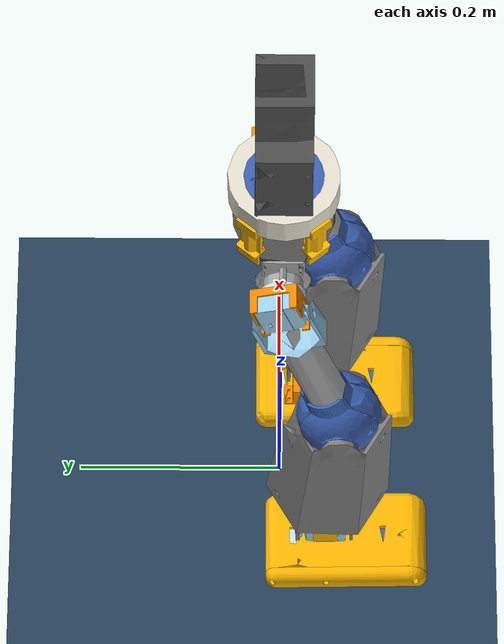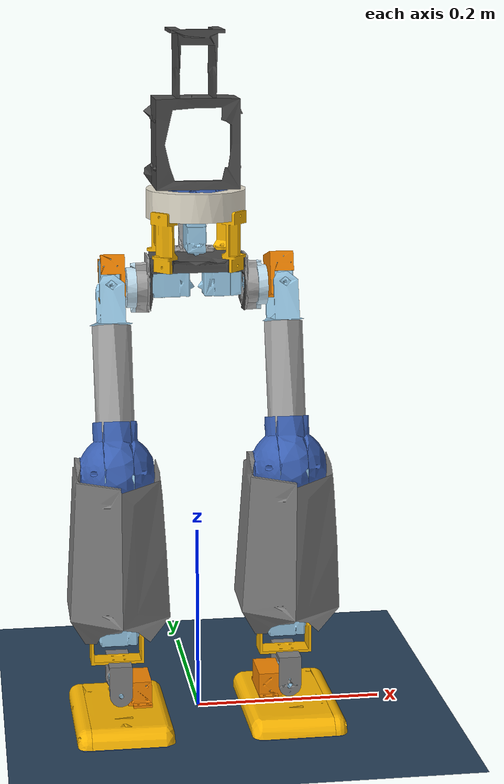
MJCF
<mujoco model="scene">
    <include file="wildrobot.xml" />

    <visual>
        <headlight diffuse="0.6 0.6 0.6" ambient="0.3 0.3 0.3" specular="0 0 0" />
        <rgba haze="0.15 0.25 0.35 1" />
        <global azimuth="160" elevation="-20" />
    </visual>

    <asset>
        <texture type="skybox" builtin="gradient" rgb1="0.3 0.5 0.7" rgb2="0 0 0" width="512" height="3072" />
        <texture type="2d" name="groundplane" builtin="checker" mark="edge" rgb1="0.2 0.3 0.4" rgb2="0.1 0.2 0.3" markrgb="0.8 0.8 0.8" width="300" height="300" />
        <material name="groundplane" texture="groundplane" texuniform="true" texrepeat="5 5" reflectance="0.2" />
    </asset>

    <worldbody>
        <light pos="0 0 3.5" dir="0 0 -1" directional="true" />
        <geom name="floor" size="0 0 0.05" pos="0 0 0" type="plane" material="groundplane" />
    </worldbody>

    <keyframe>
        <key name="home" qpos="-0.00692549 0.0149391 0.487869 0.999632 -0.0254871 -0.00610409 -0.00700632 -3.42235e-05 -0.00215037 -0.0452561 0.0278619 0.0200629 0.0390773 -2.97196e-05 0.0469174 0.0275132 0.0237825 -0.0304712" />
    </keyframe>

</mujoco>

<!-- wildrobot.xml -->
<mujoco model="wildrobot">
  <option>
    <flag eulerdamp="disable" />
  </option>
  <compiler angle="radian" meshdir="assets" autolimits="true" />
  <default>
    <default class="wildrobot">
      <joint frictionloss="0.1" armature="0.005" />
      <position kp="50" dampratio="1" />
      <default class="visual">
        <geom type="mesh" contype="0" conaffinity="0" group="2" />
      </default>
      <default class="collision">
        <geom group="3" />
      </default>
    </default>
  </default>
  <sensor>
    <gyro site="trunk_imu" name="trunk_gyro" />
    <accelerometer site="trunk_imu" name="trunk_accelerometer" />
    <magnetometer site="trunk_imu" name="trunk_magnetometer" />
    <gyro site="right_leg_imu" name="right_leg_gyro" />
    <accelerometer site="right_leg_imu" name="right_leg_accelerometer" />
    <gyro site="left_leg_imu" name="left_leg_gyro" />
    <accelerometer site="left_leg_imu" name="left_leg_accelerometer" />
    <velocimeter site="trunk_imu" name="trunk_local_linvel" />
    <framequat objtype="site" objname="trunk_imu" name="trunk_orientation" />
    <framezaxis objtype="site" objname="trunk_imu" name="trunk_upvector" />
    <framexaxis objtype="site" objname="trunk_imu" name="trunk_forwardvector" />
    <framelinvel objtype="site" objname="trunk_imu" name="trunk_global_linvel" />
    <frameangvel objtype="site" objname="trunk_imu" name="trunk_global_angvel" />
    <framelinvel objtype="site" objname="right_leg_imu" name="right_leg_global_linvel" />
    <frameangvel objtype="site" objname="right_leg_imu" name="right_leg_global_angvel" />
    <framelinvel objtype="site" objname="left_leg_imu" name="left_leg_global_linvel" />
    <frameangvel objtype="site" objname="left_leg_imu" name="left_leg_global_angvel" />
    <framelinvel objtype="site" objname="right_foot_front" name="right_foot_front_global_linvel" />
    <framelinvel objtype="site" objname="right_foot_back" name="right_foot_back_global_linvel" />
    <framelinvel objtype="site" objname="left_foot_front" name="left_foot_front_global_linvel" />
    <framelinvel objtype="site" objname="left_foot_back" name="left_foot_back_global_linvel" />
    <frameangvel objtype="site" objname="right_foot_front" name="right_foot_front_global_angvel" />
    <frameangvel objtype="site" objname="right_foot_back" name="right_foot_back_global_angvel" />
    <frameangvel objtype="site" objname="left_foot_front" name="left_foot_front_global_angvel" />
    <frameangvel objtype="site" objname="left_foot_back" name="left_foot_back_global_angvel" />
  </sensor>
  <default>
    <default class="lobotServo">
      <geom contype="0" conaffinity="0" />
      <joint damping="0.60" frictionloss="0.052" armature="0.028" />
      <position kp="17.8" kv="0.0" forcerange="-3.35 3.35" />
    </default>
    <default class="backlash">
      <joint damping="0.01" frictionloss="0" armature="0.01" limited="true" range="-0.008726646259971648 0.008726646259971648" />
    </default>
  </default>
  <worldbody>
    <body name="base" pos="0 0 0.5">
      <freejoint name="floating_base" />
      <body name="waist" pos="0 0 0" quat="1 0 0 0" childclass="wildrobot">
        <inertial pos="-3.08835e-05 0.00181517 0.00596571" mass="0.439621" fullinertia="0.000698685 0.000998265 0.00070313 7.22885e-08 5.24148e-07 -1.38528e-05" />
        <geom type="mesh" class="visual" pos="-0.00143119 0.0596393 -0.0273687" quat="0.499918 0.500082 -0.500082 -0.499918" mesh="htd_45h_1circle" material="htd_45h_1circle_material" />
        <geom type="mesh" class="visual" pos="-0.000153209 -0.000128558 0.12518" quat="0.422618 0 0 0.906308" mesh="waist_trunk_support" material="waist_trunk_support_material" />
        <geom type="mesh" class="visual" pos="0 0 0" quat="0 0 0 1" mesh="trunk_bottom" material="trunk_bottom_material" />
        <geom type="mesh" class="visual" pos="-0.059645 0.00619509 -0.00396881" quat="1 0.000164358 1.11022e-16 -2.01228e-16" mesh="htd_45h_1circle" material="htd_45h_1circle_material" />
        <geom type="mesh" class="visual" pos="-2.77556e-17 -1.04083e-17 0" quat="2.84495e-16 0 0 1" mesh="trunk_servo_connect" material="trunk_servo_connect_material" />
        <geom type="mesh" class="visual" pos="-0.00025 3.85976e-17 -6.93889e-18" quat="1 0 0 -2.84495e-16" mesh="hip_cover" material="hip_cover_material" />
        <geom type="mesh" class="visual" pos="-9.02056e-17 1.49186e-16 0.12518" quat="0.422618 0 -2.22045e-16 0.906308" mesh="scroll_out" material="scroll_out_material" />
        <geom type="mesh" class="visual" pos="0.000153209 -0.000128558 0.12518" quat="0.422618 0 9.69569e-18 -0.906308" mesh="waist_trunk_support" material="waist_trunk_support_material" />
        <geom type="mesh" class="visual" pos="-0.0001 3.81639e-17 -6.93889e-18" quat="1 0 0 -2.84495e-16" mesh="hip_trunk_connect" material="hip_trunk_connect_material" />
        <geom type="mesh" class="visual" pos="-0.000153209 0.000128558 0.12518" quat="0.906308 0 0 0.422618" mesh="waist_trunk_support" material="waist_trunk_support_material" />
        <geom type="mesh" class="visual" pos="0.000153209 0.000128558 0.12518" quat="0.906308 0 0 -0.422618" mesh="waist_trunk_support" material="waist_trunk_support_material" />
        <geom type="mesh" class="visual" pos="0.00025 -3.85976e-17 -6.93889e-18" quat="2.84495e-16 0 0 1" mesh="hip_cover" material="hip_cover_material" />
        <geom type="mesh" class="visual" pos="0.00143119 -0.0596393 -0.0273687" quat="0.499918 0.500082 0.500082 0.499918" mesh="htd_45h_1circle" material="htd_45h_1circle_material" />
        <geom type="mesh" class="visual" pos="0.0001 -3.81639e-17 -6.93889e-18" quat="2.84495e-16 0 0 1" mesh="hip_trunk_connect" material="hip_trunk_connect_material" />
        <body name="chassis" pos="4.17458e-05 -1.97751e-05 0.0482" quat="0.000583051 1 -2.40923e-07 -0.00041321">
          <joint axis="0 0 1" name="waist" type="hinge" range="-1.5707963267948966 1.5707963267948966" class="lobotServo" />
          <inertial pos="0.00235226 0.00416672 -0.0682563" mass="0.841214" fullinertia="0.00126289 0.00149567 0.000913668 -0.000107674 2.45804e-05 3.30802e-05" />
          <geom type="mesh" class="visual" pos="-0.000141421 0.0233586 -0.068" quat="8.06646e-17 4.996e-16 -1 4.06576e-20" mesh="batterybox" material="batterybox_material" />
          <geom type="mesh" class="visual" pos="-0.000141421 -0.000141421 -0.0763796" quat="2.42467e-20 1 4.996e-16 1.70073e-17" mesh="waist_platform" material="waist_platform_material" />
          <geom type="mesh" class="visual" pos="-0.000141421 -0.000141421 -0.0763796" quat="2.42467e-20 1 4.996e-16 1.70073e-17" mesh="waist_platform_2" material="waist_platform_2_material" />
          <site group="3" name="trunk_imu" pos="0.000119839 -0.000141421 -0.119" quat="9.77815e-17 -4.44089e-16 1 -0" />
        </body>
        <body name="left_hip" pos="0.0536 4.74705e-05 -0.0335836" quat="0.499502 -0.500085 -0.500498 0.499915">
          <joint axis="0 0 1" name="left_waist_hip" type="hinge" range="-1.308996938995747 1.3089969389957472" class="lobotServo" />
          <inertial pos="-0.000491371 -0.0094267 -0.0331054" mass="0.0849728" fullinertia="1.97777e-05 1.95098e-05 2.44282e-05 5.27256e-07 -4.14571e-07 -1.64422e-06" />
          <geom type="mesh" class="visual" pos="0.00859714 -0.0324713 0.0566" quat="0.560986 0.430459 0.560986 -0.430459" mesh="hip_servo_hook_left" material="hip_servo_hook_left_material" />
          <geom type="mesh" class="visual" pos="0.0260594 0.000376192 0.0231393" quat="0.0921807 0.701073 0.0921807 -0.701073" mesh="htd_45h_1circle" material="htd_45h_1circle_material" />
          <body name="upper_leg" pos="-0.0259403 -0.00712299 -0.0365475" quat="0.701293 -0.0926664 0.700714 0.092743">
            <joint axis="0 0 1" name="left_hip" type="hinge" range="-1.0471975511965959 0.34906585039886767" class="lobotServo" />
            <inertial pos="-0.00104181 0.159312 0.0267034" mass="0.236565" fullinertia="0.000987068 0.000125887 0.000979617 9.86461e-06 9.63535e-09 1.07533e-06" />
            <geom type="mesh" class="visual" pos="-0.095 3.46945e-17 0.0267" quat="0.707107 0.707107 2.22045e-16 2.45377e-16" mesh="up_leg_servo_connect" material="up_leg_servo_connect_material" />
            <geom type="mesh" class="visual" pos="-0.0948 -0.0004 0.0266985" quat="0.707105 0.707109 -2.84803e-06 2.84595e-06" mesh="knee_ball_left" material="knee_ball_left_material" />
            <geom type="mesh" class="visual" pos="-0.095 -0.0002 0.0267" quat="0.707107 0.707107 3.33067e-16 2.16678e-16" mesh="knee_ball_mid" material="knee_ball_mid_material" />
            <geom type="mesh" class="visual" pos="-0.095 1.38778e-17 0.0267" quat="0.707107 0.707107 3.33067e-16 2.1823e-16" mesh="up_leg" material="up_leg_material" />
            <geom type="mesh" class="visual" pos="0.0253613 0.198628 -0.0329432" quat="0.706811 0.000530114 -0.707402 0.000526879" mesh="htd_45h_1circle" material="htd_45h_1circle_material" />
            <geom type="mesh" class="visual" pos="-0.0952 -0.000399963 0.0268019" quat="0.707365 0.706849 -2.31378e-05 2.31379e-05" mesh="knee_ball_right" material="knee_ball_right_material" />
            <site group="3" name="left_leg_imu" pos="-3.19189e-16 0.173352 0.0264651" quat="0.5 0.5 0.5 -0.5" />
            <body name="lower_leg" pos="-0.02685 0.192352 0.0267" quat="0.12279 -0.696361 0.122789 -0.696367">
              <joint axis="0 0 1" name="left_knee" type="hinge" range="-0.3490658503988667 1.22173047639603" class="lobotServo" />
              <inertial pos="-0.000521354 -0.101401 0.0270617" mass="0.380663" fullinertia="0.00177714 0.000669988 0.00168908 1.88914e-05 3.0835e-08 -3.5834e-05" />
              <geom type="mesh" class="visual" pos="-2.01228e-15 0.192752 -0.0677579" quat="0.5 -0.5 -0.5 -0.5" mesh="low_leg_right" material="low_leg_right_material" />
              <geom type="mesh" class="visual" pos="-3.60822e-16 0.192752 -0.0677579" quat="0.5 -0.5 -0.5 -0.5" mesh="low_leg_left" material="low_leg_left_material" />
              <geom type="mesh" class="visual" pos="0.0596393 -0.173769 0.0526109" quat="1.29896e-14 -1.45382e-15 -1 0.000164358" mesh="htd_45h_1circle" material="htd_45h_1circle_material" />
              <body name="left_ankle" pos="-4.74705e-05 -0.179984 0.000442075" quat="0.999048 0.000564473 0.000438249 -0.0436191">
                <joint axis="0 0 1" name="left_ankle" type="hinge" range="-0.4363323486443301 0.6108652025522675" class="lobotServo" />
                <inertial pos="-0.000778386 -0.0291765 0.0259275" mass="0.0230191" fullinertia="1.34186e-05 1.32703e-05 1.41853e-05 -1.80568e-07 1.56329e-08 2.24395e-07" />
                <geom type="mesh" class="visual" pos="1.249e-16 -0.0722 0.0268" quat="0.5 -0.5 -0.5 -0.5" mesh="servo_bracket_btm" material="servo_bracket_btm_material" />
                <geom type="mesh" class="visual" pos="0 -0.0732 0.0268" quat="0.5 -0.5 -0.5 -0.5" mesh="servo_bracket_top" material="servo_bracket_top_material" />
                <body name="left_foot" pos="-0.0268 -0.0594 0.0268" quat="0.499992 0.500008 0.499992 0.500008">
                  <joint axis="0 0 1" name="left_foot" type="hinge" range="-0.34909746539659237 0.3490342354011394" class="lobotServo" />
                  <inertial pos="-0.0183724 -0.00183883 0.00908575" mass="0.413618" fullinertia="0.00096407 0.00073874 0.0003209 1.74031e-05 -2.95872e-05 1.47775e-05" />
                  <geom type="mesh" class="visual" pos="-0.0128254 0.000185294 0.0255108" quat="0.499502 0.500498 0.499915 0.500085" mesh="btm_servo_support" material="btm_servo_support_material" />
                  <geom type="mesh" class="visual" pos="-0.0596436 -0.0062757 0.0510108" quat="0.00074741 -1 3.08837e-07 0.00041321" mesh="htd_45h_1circle" material="htd_45h_1circle_material" />
                  <geom type="mesh" class="visual" pos="-0.0125253 0.0011852 0.0255946" quat="0.499502 0.500498 0.499915 0.500085" mesh="foot_btm_back" material="foot_btm_back_material" />
                  <geom type="mesh" class="collision" pos="-0.0125253 0.0011852 0.0255946" quat="0.499502 0.500498 0.499915 0.500085" mesh="foot_btm_back" material="foot_btm_back_material" name="left_foot_btm_back" />
                  <geom type="mesh" class="visual" pos="-0.0128254 0.000185294 0.0255108" quat="0.499502 0.500498 0.499915 0.500085" mesh="foot_side" material="foot_side_material" />
                  <geom type="mesh" class="visual" pos="-0.0128254 0.000185294 0.0255108" quat="0.499502 0.500498 0.499915 0.500085" mesh="foot_main" material="foot_main_material" />
                  <geom type="mesh" class="visual" pos="-0.0125255 0.00118539 0.0254289" quat="0.499502 0.500498 0.499915 0.500085" mesh="foot_btm_front" material="foot_btm_front_material" />
                  <geom type="mesh" class="collision" pos="-0.0125255 0.00118539 0.0254289" quat="0.499502 0.500498 0.499915 0.500085" mesh="foot_btm_front" material="foot_btm_front_material" name="left_foot_btm_front" />
                  <site group="3" name="left_foot_front" pos="-0.0338724 0.00125162 -0.0313534" quat="0.706814 0.00041245 0.707399 0.000412109" />
                  <site group="3" name="left_foot_back" pos="-0.0337982 0.00114695 0.0584122" quat="0.706814 0.00041245 0.707399 0.000412109" />
                </body>
              </body>
            </body>
          </body>
        </body>
        <body name="right_hip" pos="-0.0536 -4.74705e-05 -0.0335836" quat="0.499915 -0.500498 0.500085 -0.499502">
          <joint axis="0 0 1" name="right_waist_hip" type="hinge" range="-1.2823101814238873 1.3356836965676069" class="lobotServo" />
          <inertial pos="5.68446e-05 -0.0093822 -0.0331404" mass="0.0849728" fullinertia="1.97652e-05 1.9558e-05 2.44237e-05 -5.40817e-07 3.36235e-07 -1.65062e-06" />
          <geom type="mesh" class="visual" pos="-0.0262318 0.00112832 -0.0961393" quat="0.101527 0.69978 -0.101527 0.69978" mesh="htd_45h_1circle" material="htd_45h_1circle_material" />
          <geom type="mesh" class="visual" pos="-0.00965226 -0.0321735 0.0566" quat="0.566679 0.422936 -0.566679 0.422936" mesh="hip_servo_hook_right" material="hip_servo_hook_right_material" />
          <body name="upper_leg_2" pos="0.0255493 -0.00775574 -0.0364525" quat="0.699415 -0.102092 -0.699993 -0.102008">
            <joint axis="0 0 1" name="right_hip" type="hinge" range="-0.3491485713851723 1.0471148302102913" class="lobotServo" />
            <inertial pos="-0.00105499 0.159312 0.0267034" mass="0.236565" fullinertia="0.000987066 0.000125888 0.000979617 9.93584e-06 9.5464e-09 1.07533e-06" />
            <geom type="mesh" class="visual" pos="-0.095 -7.85849e-06 0.0267" quat="0.707107 0.707107 2.92463e-05 2.92463e-05" mesh="up_leg_servo_connect" material="up_leg_servo_connect_material" />
            <geom type="mesh" class="visual" pos="-0.0948 -0.000407842 0.0266985" quat="0.707105 0.707109 2.63983e-05 3.20922e-05" mesh="knee_ball_left" material="knee_ball_left_material" />
            <geom type="mesh" class="visual" pos="-0.095 -0.000207858 0.0267" quat="0.707107 0.707107 2.92463e-05 2.92463e-05" mesh="knee_ball_mid" material="knee_ball_mid_material" />
            <geom type="mesh" class="visual" pos="-0.095 -7.85849e-06 0.0267" quat="0.707107 0.707107 2.92463e-05 2.92463e-05" mesh="up_leg" material="up_leg_material" />
            <geom type="mesh" class="visual" pos="0.0253449 0.19863 -0.0329432" quat="0.706811 0.000559373 -0.707402 0.000556113" mesh="htd_45h_1circle" material="htd_45h_1circle_material" />
            <geom type="mesh" class="visual" pos="-0.0952 -0.000407838 0.0268019" quat="0.707365 0.706849 6.0978e-06 5.23949e-05" mesh="knee_ball_right" material="knee_ball_right_material" />
            <site group="3" name="right_leg_imu" pos="-1.43399e-05 0.173352 0.0264651" quat="0.500021 0.499979 0.500021 -0.499979" />
            <body name="lower_leg_2" pos="-0.0268659 0.19235 0.0267" quat="0.122819 -0.696366 0.12276 -0.696362">
              <joint axis="0 0 1" name="right_knee" type="hinge" range="-0.34906585039886595 1.2217304763960306" class="lobotServo" />
              <inertial pos="-0.000521354 -0.101401 0.0270617" mass="0.380663" fullinertia="0.00177714 0.000669988 0.00168908 1.88914e-05 3.0835e-08 -3.5834e-05" />
              <geom type="mesh" class="visual" pos="-2.17881e-15 0.192752 -0.0677579" quat="0.5 -0.5 -0.5 -0.5" mesh="low_leg_right" material="low_leg_right_material" />
              <geom type="mesh" class="visual" pos="-2.22045e-16 0.192752 -0.0677579" quat="0.5 -0.5 -0.5 -0.5" mesh="low_leg_left" material="low_leg_left_material" />
              <geom type="mesh" class="visual" pos="0.0596393 -0.173769 0.0526109" quat="1.04361e-14 6.75831e-17 -1 0.000164358" mesh="htd_45h_1circle" material="htd_45h_1circle_material" />
              <body name="right_ankle" pos="-4.74705e-05 -0.179984 0.000442075" quat="2.40923e-07 -0.00041321 0.000583051 -1">
                <joint axis="0 0 1" name="right_ankle" type="hinge" range="-0.43633231299858244 0.6108652381980152" class="lobotServo" />
                <inertial pos="0.00176747 0.0291333 0.0259275" mass="0.0230191" fullinertia="1.34489e-05 1.32401e-05 1.41853e-05 1.64944e-07 -3.98387e-09 -2.24904e-07" />
                <geom type="mesh" class="visual" pos="0.00629264 0.0719253 0.0268" quat="0.477714 0.521334 0.477714 -0.521334" mesh="servo_bracket_btm" material="servo_bracket_btm_material" />
                <geom type="mesh" class="visual" pos="0.0063798 0.0729215 0.0268" quat="0.521334 0.477714 -0.521334 0.477714" mesh="servo_bracket_top" material="servo_bracket_top_material" />
                <body name="right_foot" pos="-0.021521 0.0615097 0.0268" quat="0.477736 0.477692 -0.521354 -0.521314">
                  <joint axis="0 0 1" name="right_foot" type="hinge" range="-0.34915044596643047 0.3489812548313013" class="lobotServo" />
                  <inertial pos="-0.0182605 0.00187575 -0.0419443" mass="0.413618" fullinertia="0.000978456 0.000752203 0.000319832 -1.71895e-05 -3.90028e-05 -1.62365e-05" />
                  <geom type="mesh" class="visual" pos="-0.0128256 0.159815 -0.0265243" quat="0.499915 0.500085 0.499502 0.500498" mesh="foot_main_right" material="foot_main_right_material" />
                  <geom type="mesh" class="visual" pos="-0.0125255 -0.00118539 -0.0266289" quat="0.499915 0.500085 0.499502 0.500498" mesh="foot_btm_front" material="foot_btm_front_material" />
                  <geom type="mesh" class="collision" pos="-0.0125255 -0.00118539 -0.0266289" quat="0.499915 0.500085 0.499502 0.500498" mesh="foot_btm_front" material="foot_btm_front_material" name="right_foot_btm_front" />
                  <geom type="mesh" class="visual" pos="-0.0128256 0.159815 -0.0265243" quat="0.499915 0.500085 0.499502 0.500498" mesh="foot_side_right" material="foot_side_right_material" />
                  <geom type="mesh" class="visual" pos="-0.0128254 -0.000185294 -0.0267108" quat="0.500498 -0.499502 0.500085 -0.499915" mesh="btm_servo_support" material="btm_servo_support_material" />
                  <geom type="mesh" class="visual" pos="-0.0105255 -0.00118539 -0.0266273" quat="0.499915 0.500085 0.499502 0.500498" mesh="foot_btm_back" material="foot_btm_back_material" />
                  <geom type="mesh" class="collision" pos="-0.0105255 -0.00118539 -0.0266273" quat="0.499915 0.500085 0.499502 0.500498" mesh="foot_btm_back" material="foot_btm_back_material" name="right_foot_btm_back" />
                  <geom type="mesh" class="visual" pos="-0.0596436 0.0062757 -0.0522108" quat="1 0.00074741 -0.00041321 3.08837e-07" mesh="htd_45h_1circle" material="htd_45h_1circle_material" />
                  <site group="3" name="right_foot_front" pos="-0.0337785 -0.00111915 -0.0834465" quat="0.707399 0.000412109 0.706814 0.00041245" />
                  <site group="3" name="right_foot_back" pos="-0.0318526 -0.00122364 0.00615509" quat="0.707399 0.000412109 0.706814 0.00041245" />
                </body>
              </body>
            </body>
          </body>
        </body>
      </body>
    </body>
  </worldbody>
  <asset>
    <mesh file="hip_servo_hook_left.stl" />
    <mesh file="hip_servo_hook_right.stl" />
    <mesh file="knee_ball_mid.stl" />
    <mesh file="scroll_out.stl" />
    <mesh file="up_leg_servo_connect.stl" />
    <mesh file="low_leg_right.stl" />
    <mesh file="foot_main_right.stl" />
    <mesh file="knee_ball_left.stl" />
    <mesh file="hip_trunk_connect.stl" />
    <mesh file="trunk_bottom.stl" />
    <mesh file="hip_cover.stl" />
    <mesh file="waist_platform.stl" />
    <mesh file="btm_servo_support.stl" />
    <mesh file="foot_btm_back.stl" />
    <mesh file="foot_main.stl" />
    <mesh file="foot_btm_front.stl" />
    <mesh file="low_leg_left.stl" />
    <mesh file="foot_side_right.stl" />
    <mesh file="foot_side.stl" />
    <mesh file="waist_trunk_support.stl" />
    <mesh file="batterybox.stl" />
    <mesh file="knee_ball_right.stl" />
    <mesh file="htd_45h_1circle.stl" />
    <mesh file="servo_bracket_btm.stl" />
    <mesh file="trunk_servo_connect.stl" />
    <mesh file="servo_bracket_top.stl" />
    <mesh file="up_leg.stl" />
    <mesh file="waist_platform_2.stl" />
    <material name="htd_45h_1circle_material" rgba="0.615686 0.811765 0.929412 1" />
    <material name="waist_trunk_support_material" rgba="0.980392 0.713725 0.00392157 1" />
    <material name="trunk_bottom_material" rgba="0.301961 0.301961 0.301961 1" />
    <material name="trunk_servo_connect_material" rgba="0.647059 0.647059 0.647059 1" />
    <material name="hip_cover_material" rgba="0.768627 0.886275 0.952941 1" />
    <material name="scroll_out_material" rgba="0.901961 0.878431 0.811765 1" />
    <material name="hip_trunk_connect_material" rgba="0.647059 0.647059 0.647059 1" />
    <material name="batterybox_material" rgba="0.301961 0.301961 0.301961 1" />
    <material name="waist_platform_material" rgba="0.231373 0.380392 0.705882 1" />
    <material name="waist_platform_2_material" rgba="0.231373 0.380392 0.705882 1" />
    <material name="hip_servo_hook_left_material" rgba="0.972549 0.529412 0.00392157 1" />
    <material name="up_leg_servo_connect_material" rgba="0.615686 0.811765 0.929412 1" />
    <material name="knee_ball_left_material" rgba="0.231373 0.380392 0.705882 1" />
    <material name="knee_ball_mid_material" rgba="0.231373 0.380392 0.705882 1" />
    <material name="up_leg_material" rgba="0.647059 0.647059 0.647059 1" />
    <material name="knee_ball_right_material" rgba="0.231373 0.380392 0.705882 1" />
    <material name="low_leg_right_material" rgba="0.498039 0.498039 0.498039 1" />
    <material name="low_leg_left_material" rgba="0.498039 0.498039 0.498039 1" />
    <material name="servo_bracket_btm_material" rgba="0.498039 0.498039 0.498039 1" />
    <material name="servo_bracket_top_material" rgba="0.980392 0.713725 0.00392157 1" />
    <material name="btm_servo_support_material" rgba="0.972549 0.529412 0.00392157 1" />
    <material name="foot_btm_back_material" rgba="0.768627 0.886275 0.952941 1" />
    <material name="foot_side_material" rgba="0.980392 0.713725 0.00392157 1" />
    <material name="foot_main_material" rgba="0.980392 0.713725 0.00392157 1" />
    <material name="foot_btm_front_material" rgba="0.231373 0.380392 0.705882 1" />
    <material name="hip_servo_hook_right_material" rgba="0.972549 0.529412 0.00392157 1" />
    <material name="foot_main_right_material" rgba="0.980392 0.713725 0.00392157 1" />
    <material name="foot_side_right_material" rgba="0.980392 0.713725 0.00392157 1" />
  </asset>
  <actuator>
    <position class="lobotServo" name="waist" joint="waist" inheritrange="1" />
    <position class="lobotServo" name="left_waist_hip" joint="left_waist_hip" inheritrange="1" />
    <position class="lobotServo" name="left_hip" joint="left_hip" inheritrange="1" />
    <position class="lobotServo" name="left_knee" joint="left_knee" inheritrange="1" />
    <position class="lobotServo" name="left_ankle" joint="left_ankle" inheritrange="1" />
    <position class="lobotServo" name="left_foot" joint="left_foot" inheritrange="1" />
    <position class="lobotServo" name="right_waist_hip" joint="right_waist_hip" inheritrange="1" />
    <position class="lobotServo" name="right_hip" joint="right_hip" inheritrange="1" />
    <position class="lobotServo" name="right_knee" joint="right_knee" inheritrange="1" />
    <position class="lobotServo" name="right_ankle" joint="right_ankle" inheritrange="1" />
    <position class="lobotServo" name="right_foot" joint="right_foot" inheritrange="1" />
  </actuator>
  <equality />
</mujoco>
